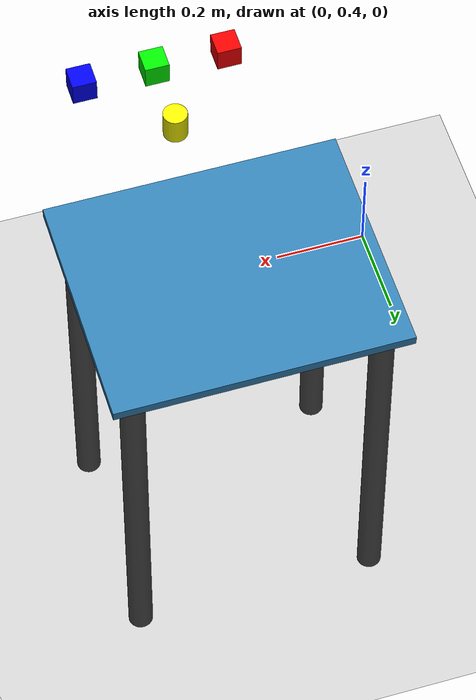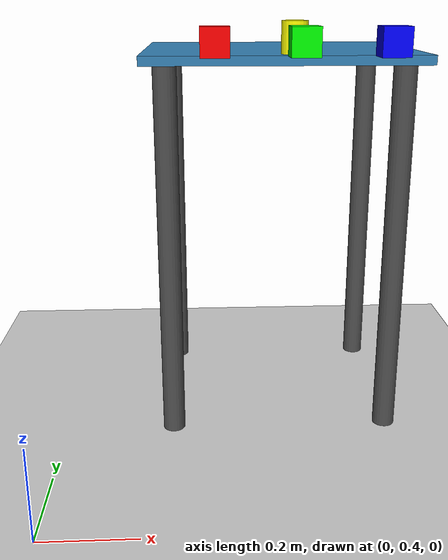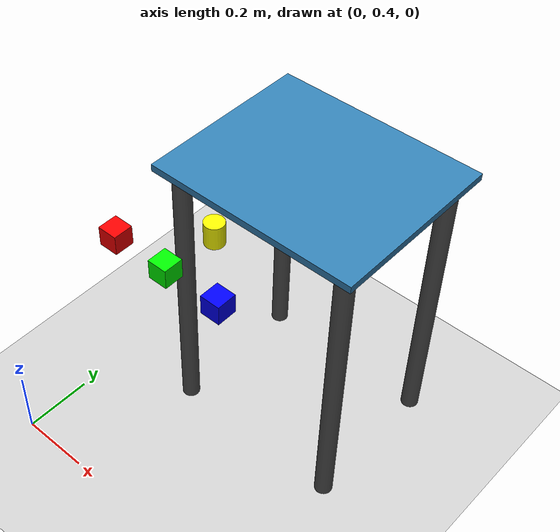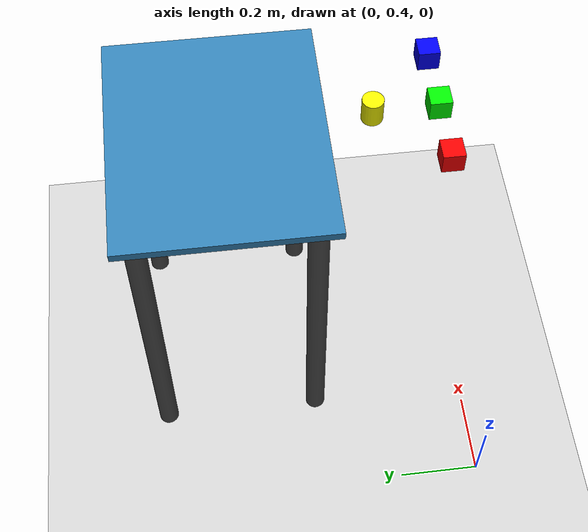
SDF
<sdf version="1.4">
 <world name="default">
  <physics type="ode">
   <gravity>0 0 -9.81</gravity>
   <max_step_size>0.002</max_step_size>
   <real_time_factor>1</real_time_factor>
   <real_time_update_rate>500</real_time_update_rate>
   <ode>
    <solver><type>quick</type><iters>20</iters><sor>1.3</sor></solver>
    <constraints>
     <cfm>0.0</cfm>
     <erp>0.2</erp>
     <contact_max_correcting_vel>100</contact_max_correcting_vel>
     <contact_surface_layer>0.001</contact_surface_layer>
    </constraints>
   </ode>
  </physics>
  <include><uri>model://sun</uri></include>
  <include><uri>model://ground_plane</uri></include>
  <model name="target_table">
   <static>true</static>
   <pose>0.5 1.0 0.0 0 0 0</pose>
   <link name="link">
    <collision name="surface">
     <pose>0 0 0.85 0 0 0</pose>
     <geometry><box><size>0.6 0.5 0.02</size></box></geometry>
     <surface><friction><ode><mu>1.0</mu><mu2>1.0</mu2></ode></friction></surface>
    </collision>
    <visual name="surface_visual">
     <pose>0 0 0.85 0 0 0</pose>
     <geometry><box><size>0.6 0.5 0.02</size></box></geometry>
     <material><ambient>0.2 0.5 0.7 1</ambient><diffuse>0.2 0.5 0.7 1</diffuse></material>
    </visual>
    <collision name="leg1">
     <pose>0.25 0.2 0.425 0 0 0</pose>
     <geometry><cylinder><radius>0.025</radius><length>0.85</length></cylinder></geometry>
    </collision>
    <visual name="leg1_v">
     <pose>0.25 0.2 0.425 0 0 0</pose>
     <geometry><cylinder><radius>0.025</radius><length>0.85</length></cylinder></geometry>
     <material><ambient>0.3 0.3 0.3 1</ambient></material>
    </visual>
    <collision name="leg2">
     <pose>-0.25 0.2 0.425 0 0 0</pose>
     <geometry><cylinder><radius>0.025</radius><length>0.85</length></cylinder></geometry>
    </collision>
    <visual name="leg2_v">
     <pose>-0.25 0.2 0.425 0 0 0</pose>
     <geometry><cylinder><radius>0.025</radius><length>0.85</length></cylinder></geometry>
     <material><ambient>0.3 0.3 0.3 1</ambient></material>
    </visual>
    <collision name="leg3">
     <pose>0.25 -0.2 0.425 0 0 0</pose>
     <geometry><cylinder><radius>0.025</radius><length>0.85</length></cylinder></geometry>
    </collision>
    <visual name="leg3_v">
     <pose>0.25 -0.2 0.425 0 0 0</pose>
     <geometry><cylinder><radius>0.025</radius><length>0.85</length></cylinder></geometry>
     <material><ambient>0.3 0.3 0.3 1</ambient></material>
    </visual>
    <collision name="leg4">
     <pose>-0.25 -0.2 0.425 0 0 0</pose>
     <geometry><cylinder><radius>0.025</radius><length>0.85</length></cylinder></geometry>
    </collision>
    <visual name="leg4_v">
     <pose>-0.25 -0.2 0.425 0 0 0</pose>
     <geometry><cylinder><radius>0.025</radius><length>0.85</length></cylinder></geometry>
     <material><ambient>0.3 0.3 0.3 1</ambient></material>
    </visual>
   </link>
  </model>
  <model name="cube_red">
   <pose>0.35 0.5 0.90 0 0 0</pose>
   <link name="link">
    <inertial>
     <mass>0.1</mass>
     <inertia>
      <ixx>0.000041</ixx>
      <ixy>0</ixy>
      <ixz>0</ixz>
      <iyy>0.000041</iyy>
      <iyz>0</iyz>
      <izz>0.000041</izz>
     </inertia>
    </inertial>
    <collision name="collision">
     <geometry><box><size>0.05 0.05 0.05</size></box></geometry>
     <surface><friction><ode><mu>1.0</mu><mu2>1.0</mu2></ode></friction></surface>
    </collision>
    <visual name="visual">
     <geometry><box><size>0.05 0.05 0.05</size></box></geometry>
     <material><ambient>1 0 0 1</ambient><diffuse>1 0 0 1</diffuse></material>
    </visual>
   </link>
  </model>
  <model name="cube_green">
   <pose>0.50 0.5 0.90 0 0 0</pose>
   <link name="link">
    <inertial>
     <mass>0.1</mass>
     <inertia>
      <ixx>0.000041</ixx>
      <ixy>0</ixy>
      <ixz>0</ixz>
      <iyy>0.000041</iyy>
      <iyz>0</iyz>
      <izz>0.000041</izz>
     </inertia>
    </inertial>
    <collision name="collision">
     <geometry><box><size>0.05 0.05 0.05</size></box></geometry>
     <surface><friction><ode><mu>1.0</mu><mu2>1.0</mu2></ode></friction></surface>
    </collision>
    <visual name="visual">
     <geometry><box><size>0.05 0.05 0.05</size></box></geometry>
     <material><ambient>0 1 0 1</ambient><diffuse>0 1 0 1</diffuse></material>
    </visual>
   </link>
  </model>
  <model name="cube_blue">
   <pose>0.65 0.5 0.90 0 0 0</pose>
   <link name="link">
    <inertial>
     <mass>0.1</mass>
     <inertia>
      <ixx>0.000041</ixx>
      <ixy>0</ixy>
      <ixz>0</ixz>
      <iyy>0.000041</iyy>
      <iyz>0</iyz>
      <izz>0.000041</izz>
     </inertia>
    </inertial>
    <collision name="collision">
     <geometry><box><size>0.05 0.05 0.05</size></box></geometry>
     <surface><friction><ode><mu>1.0</mu><mu2>1.0</mu2></ode></friction></surface>
    </collision>
    <visual name="visual">
     <geometry><box><size>0.05 0.05 0.05</size></box></geometry>
     <material><ambient>0 0 1 1</ambient><diffuse>0 0 1 1</diffuse></material>
    </visual>
   </link>
  </model>
  <model name="cylinder_yellow">
   <pose>0.50 0.65 0.90 0 0 0</pose>
   <link name="link">
    <inertial>
     <mass>0.1</mass>
     <inertia>
      <ixx>0.000045</ixx>
      <ixy>0</ixy>
      <ixz>0</ixz>
      <iyy>0.000045</iyy>
      <iyz>0</iyz>
      <izz>0.000031</izz>
     </inertia>
    </inertial>
    <collision name="collision">
     <geometry><cylinder><radius>0.025</radius><length>0.06</length></cylinder></geometry>
     <surface><friction><ode><mu>1.0</mu><mu2>1.0</mu2></ode></friction></surface>
    </collision>
    <visual name="visual">
     <geometry><cylinder><radius>0.025</radius><length>0.06</length></cylinder></geometry>
     <material><ambient>1 1 0 1</ambient><diffuse>1 1 0 1</diffuse></material>
    </visual>
   </link>
  </model>
 </world>
</sdf>
